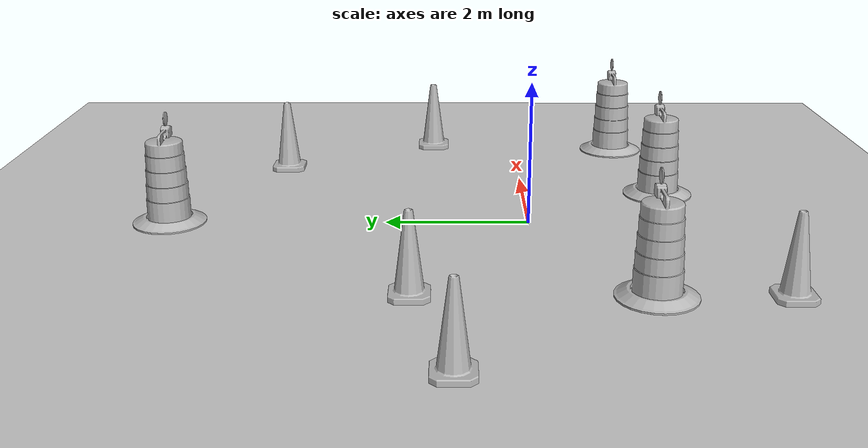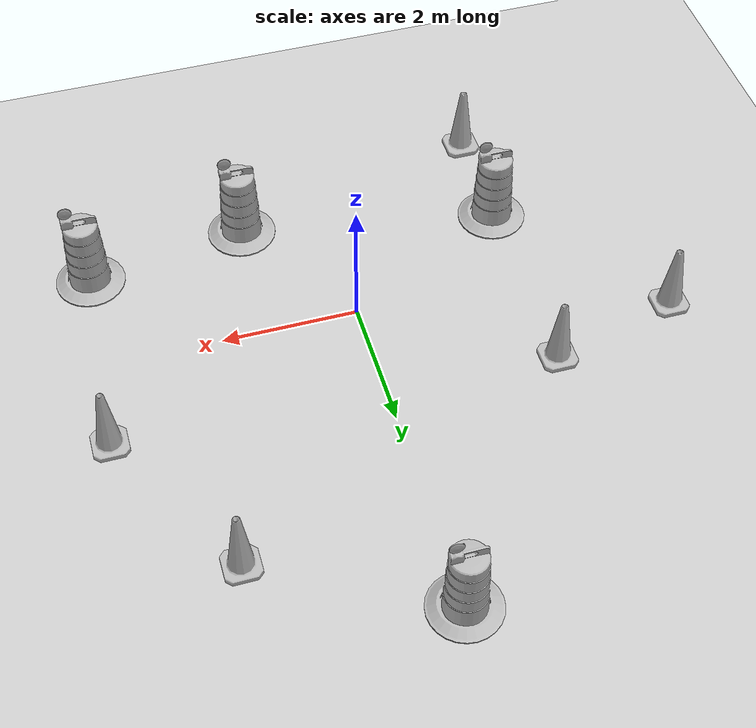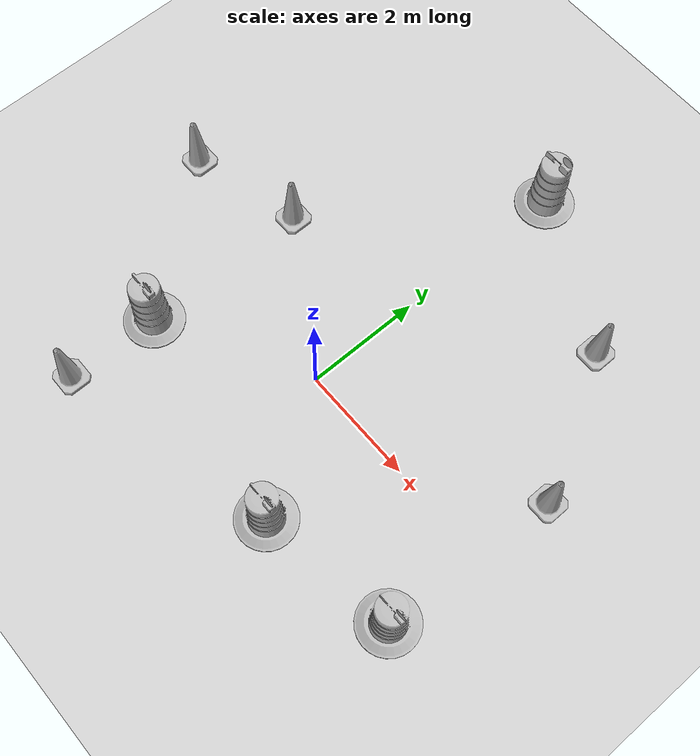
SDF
<sdf version="1.7">
 <world name="default">
  <light name="sun" type="directional">
   <pose>0 0 10 0 -0 0</pose>
   <diffuse>0.8 0.8 0.8 1</diffuse>
   <specular>0.2 0.2 0.2 1</specular>
   <attenuation>
    <range>1000</range>
    <constant>0.9</constant>
    <linear>0.01</linear>
    <quadratic>0.001</quadratic>
   </attenuation>
   <direction>-0.5 0.1 -0.9</direction>
   <spot><inner_angle>0</inner_angle><outer_angle>0</outer_angle><falloff>0</falloff></spot>
  </light>
  <model name="ground_plane">
   <static>1</static>
   <link name="link">
    <collision name="collision">
     <geometry><plane><normal>0 0 1</normal><size>100 100</size></plane></geometry>
     <surface>
      <contact><collide_bitmask>65535</collide_bitmask></contact>
      <friction><ode><mu>100</mu><mu2>50</mu2></ode></friction>
     </surface>
    </collision>
    <visual name="visual">
     <cast_shadows>0</cast_shadows>
     <geometry><plane><normal>0 0 1</normal><size>100 100</size></plane></geometry>
     <material>
      <script><uri>file://media/materials/scripts/gazebo.material</uri><name>Gazebo/Grey</name></script>
     </material>
    </visual>
   </link>
  </model>
  <gravity>0 0 -9.8</gravity>
  <magnetic_field>6e-06 2.3e-05 -4.2e-05</magnetic_field>
  <atmosphere type="adiabatic"/>
  <physics type="ode">
   <max_step_size>0.001</max_step_size>
   <real_time_factor>1</real_time_factor>
   <real_time_update_rate>1000</real_time_update_rate>
  </physics>
  <scene><ambient>0.4 0.4 0.4 1</ambient><background>0.7 0.7 0.7 1</background><shadows>1</shadows></scene>
  <audio><device>default</device></audio>
  <spherical_coordinates>
   <surface_model>EARTH_WGS84</surface_model>
   <latitude_deg>0</latitude_deg>
   <longitude_deg>0</longitude_deg>
   <elevation>0</elevation>
   <heading_deg>0</heading_deg>
  </spherical_coordinates>
  <model name="Construction Barrel">
   <link name="link">
    <inertial>
     <pose>0 0 0.4 0 -0 0</pose>
     <mass>500</mass>
     <inertia><ixx>51.2096</ixx><iyy>51.2096</iyy><izz>25</izz><ixy>0</ixy><ixz>0</ixz><iyz>0</iyz></inertia>
    </inertial>
    <collision name="collision">
     <geometry><mesh><uri>model://construction_barrel/meshes/construction_barrel.dae</uri></mesh></geometry>
    </collision>
    <visual name="visual">
     <geometry><mesh><uri>model://construction_barrel/meshes/construction_barrel.dae</uri></mesh></geometry>
    </visual>
   </link>
   <pose>0.027303 5.03855 -3e-06 6e-06 1.1e-05 -1.9e-05</pose>
  </model>
  <model name="Construction Cone">
   <link name="link">
    <collision name="collision">
     <geometry>
      <mesh><scale>10 10 10</scale><uri>model://construction_cone/meshes/construction_cone.dae</uri></mesh>
     </geometry>
    </collision>
    <visual name="visual">
     <geometry>
      <mesh><scale>10 10 10</scale><uri>model://construction_cone/meshes/construction_cone.dae</uri></mesh>
     </geometry>
    </visual>
    <inertial>
     <inertia><ixx>1</ixx><ixy>0</ixy><ixz>0</ixz><iyy>1</iyy><iyz>0</iyz><izz>1</izz></inertia>
     <mass>1</mass>
    </inertial>
   </link>
   <pose>2.56105 3.70576 -0 0 -1e-06 0</pose>
  </model>
  <model name="Construction Barrel_0">
   <link name="link">
    <inertial>
     <pose>0 0 0.4 0 -0 0</pose>
     <mass>500</mass>
     <inertia><ixx>51.2096</ixx><iyy>51.2096</iyy><izz>25</izz><ixy>0</ixy><ixz>0</ixz><iyz>0</iyz></inertia>
    </inertial>
    <collision name="collision">
     <geometry><mesh><uri>model://construction_barrel/meshes/construction_barrel.dae</uri></mesh></geometry>
    </collision>
    <visual name="visual">
     <geometry><mesh><uri>model://construction_barrel/meshes/construction_barrel.dae</uri></mesh></geometry>
    </visual>
   </link>
   <pose>1.25201 -2.02935 -1e-06 7e-06 8e-06 -1.6e-05</pose>
  </model>
  <model name="Construction Barrel_1">
   <link name="link">
    <inertial>
     <pose>0 0 0.4 0 -0 0</pose>
     <mass>500</mass>
     <inertia><ixx>51.2096</ixx><iyy>51.2096</iyy><izz>25</izz><ixy>0</ixy><ixz>0</ixz><iyz>0</iyz></inertia>
    </inertial>
    <collision name="collision">
     <geometry><mesh><uri>model://construction_barrel/meshes/construction_barrel.dae</uri></mesh></geometry>
    </collision>
    <visual name="visual">
     <geometry><mesh><uri>model://construction_barrel/meshes/construction_barrel.dae</uri></mesh></geometry>
    </visual>
   </link>
   <pose>3.61949 -1.65917 -1e-06 2e-06 -1e-06 -1.2e-05</pose>
  </model>
  <model name="Construction Cone_0">
   <link name="link">
    <collision name="collision">
     <geometry>
      <mesh><scale>10 10 10</scale><uri>model://construction_cone/meshes/construction_cone.dae</uri></mesh>
     </geometry>
    </collision>
    <visual name="visual">
     <geometry>
      <mesh><scale>10 10 10</scale><uri>model://construction_cone/meshes/construction_cone.dae</uri></mesh>
     </geometry>
    </visual>
    <inertial>
     <inertia><ixx>1</ixx><ixy>0</ixy><ixz>0</ixz><iyy>1</iyy><iyz>0</iyz><izz>1</izz></inertia>
     <mass>1</mass>
    </inertial>
   </link>
   <pose>3.8431 1.37624 -0 0 -1e-06 0</pose>
  </model>
  <model name="Construction Barrel_2">
   <link name="link">
    <inertial>
     <pose>0 0 0.4 0 -0 0</pose>
     <mass>500</mass>
     <inertia><ixx>51.2096</ixx><iyy>51.2096</iyy><izz>25</izz><ixy>0</ixy><ixz>0</ixz><iyz>0</iyz></inertia>
    </inertial>
    <collision name="collision">
     <geometry><mesh><uri>model://construction_barrel/meshes/construction_barrel.dae</uri></mesh></geometry>
    </collision>
    <visual name="visual">
     <geometry><mesh><uri>model://construction_barrel/meshes/construction_barrel.dae</uri></mesh></geometry>
    </visual>
   </link>
   <pose>-2.50784 -1.32804 0 1e-06 1e-06 -8e-06</pose>
  </model>
  <model name="Construction Cone_1">
   <link name="link">
    <collision name="collision">
     <geometry>
      <mesh><scale>10 10 10</scale><uri>model://construction_cone/meshes/construction_cone.dae</uri></mesh>
     </geometry>
    </collision>
    <visual name="visual">
     <geometry>
      <mesh><scale>10 10 10</scale><uri>model://construction_cone/meshes/construction_cone.dae</uri></mesh>
     </geometry>
    </visual>
    <inertial>
     <inertia><ixx>1</ixx><ixy>0</ixy><ixz>0</ixz><iyy>1</iyy><iyz>0</iyz><izz>1</izz></inertia>
     <mass>1</mass>
    </inertial>
   </link>
   <pose>-2.54514 -2.93872 -0 0 -1e-06 0</pose>
  </model>
  <model name="Construction Cone_2">
   <link name="link">
    <collision name="collision">
     <geometry>
      <mesh><scale>10 10 10</scale><uri>model://construction_cone/meshes/construction_cone.dae</uri></mesh>
     </geometry>
    </collision>
    <visual name="visual">
     <geometry>
      <mesh><scale>10 10 10</scale><uri>model://construction_cone/meshes/construction_cone.dae</uri></mesh>
     </geometry>
    </visual>
    <inertial>
     <inertia><ixx>1</ixx><ixy>0</ixy><ixz>0</ixz><iyy>1</iyy><iyz>0</iyz><izz>1</izz></inertia>
     <mass>1</mass>
    </inertial>
   </link>
   <pose>-4.41351 1.08301 -0 1e-06 -0 0</pose>
  </model>
  <model name="Construction Cone_3">
   <link name="link">
    <collision name="collision">
     <geometry>
      <mesh><scale>10 10 10</scale><uri>model://construction_cone/meshes/construction_cone.dae</uri></mesh>
     </geometry>
    </collision>
    <visual name="visual">
     <geometry>
      <mesh><scale>10 10 10</scale><uri>model://construction_cone/meshes/construction_cone.dae</uri></mesh>
     </geometry>
    </visual>
    <inertial>
     <inertia><ixx>1</ixx><ixy>0</ixy><ixz>0</ixz><iyy>1</iyy><iyz>0</iyz><izz>1</izz></inertia>
     <mass>1</mass>
    </inertial>
   </link>
   <pose>-2.49568 1.59344 -0 0 -0 0</pose>
  </model>
 </world>
</sdf>
